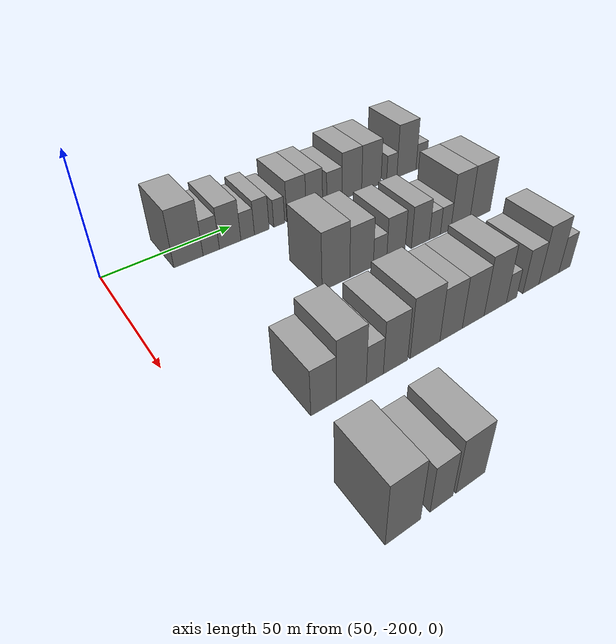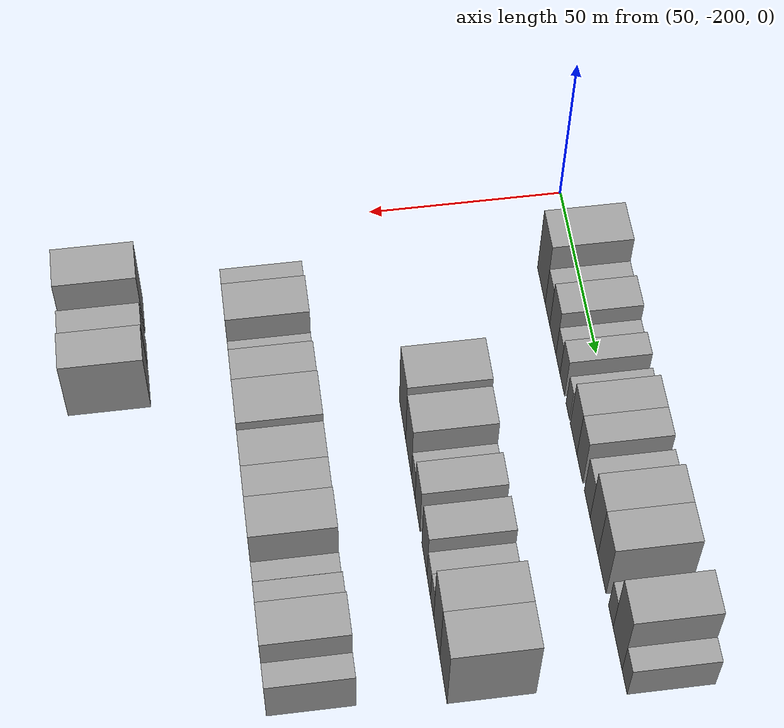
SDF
<sdf version="1.6">
 <world name="default">
  <model name="building_46">
   <static>1</static>
   <pose>50.0000 -171.7198 0 0.000000 0.000000 0.000000</pose>
   <link name="link">
    <pose>0 0 12.00 0 0 0</pose>
    <collision name="collision"><geometry><box><size>20.0000 11.2362 24.0000</size></box></geometry></collision>
    <visual name="visual">
     <cast_shadows>0</cast_shadows>
     <geometry><box><size>20.0000 11.2362 24.0000</size></box></geometry>
     <material>
      <script>
       <uri>model://grey_wall/materials/scripts</uri>
       <uri>model://grey_wall/materials/textures</uri>
       <name>vrc/grey_wall</name>
      </script>
     </material>
    </visual>
   </link>
  </model>
  <model name="building_47">
   <static>1</static>
   <pose>50.0000 -162.8576 0 0.000000 0.000000 0.000000</pose>
   <link name="link">
    <pose>0 0 7.50 0 0 0</pose>
    <collision name="collision"><geometry><box><size>20.0000 6.4881 15.0000</size></box></geometry></collision>
    <visual name="visual">
     <cast_shadows>0</cast_shadows>
     <geometry><box><size>20.0000 6.4881 15.0000</size></box></geometry>
     <material>
      <script>
       <uri>model://grey_wall/materials/scripts</uri>
       <uri>model://grey_wall/materials/textures</uri>
       <name>vrc/grey_wall</name>
      </script>
     </material>
    </visual>
   </link>
  </model>
  <model name="building_48">
   <static>1</static>
   <pose>50.0000 -155.2234 0 0.000000 0.000000 0.000000</pose>
   <link name="link">
    <pose>0 0 9.00 0 0 0</pose>
    <collision name="collision"><geometry><box><size>20.0000 8.7803 18.0000</size></box></geometry></collision>
    <visual name="visual">
     <cast_shadows>0</cast_shadows>
     <geometry><box><size>20.0000 8.7803 18.0000</size></box></geometry>
     <material>
      <script>
       <uri>model://grey_wall/materials/scripts</uri>
       <uri>model://grey_wall/materials/textures</uri>
       <name>vrc/grey_wall</name>
      </script>
     </material>
    </visual>
   </link>
  </model>
  <model name="building_49">
   <static>1</static>
   <pose>50.0000 -147.9795 0 0.000000 0.000000 0.000000</pose>
   <link name="link">
    <pose>0 0 6.00 0 0 0</pose>
    <collision name="collision"><geometry><box><size>20.0000 5.7076 12.0000</size></box></geometry></collision>
    <visual name="visual">
     <cast_shadows>0</cast_shadows>
     <geometry><box><size>20.0000 5.7076 12.0000</size></box></geometry>
     <material>
      <script>
       <uri>model://grey_wall/materials/scripts</uri>
       <uri>model://grey_wall/materials/textures</uri>
       <name>vrc/grey_wall</name>
      </script>
     </material>
    </visual>
   </link>
  </model>
  <model name="building_50">
   <static>1</static>
   <pose>50.0000 -141.9601 0 0.000000 0.000000 0.000000</pose>
   <link name="link">
    <pose>0 0 7.50 0 0 0</pose>
    <collision name="collision"><geometry><box><size>20.0000 6.3311 15.0000</size></box></geometry></collision>
    <visual name="visual">
     <cast_shadows>0</cast_shadows>
     <geometry><box><size>20.0000 6.3311 15.0000</size></box></geometry>
     <material>
      <script>
       <uri>model://grey_wall/materials/scripts</uri>
       <uri>model://grey_wall/materials/textures</uri>
       <name>vrc/grey_wall</name>
      </script>
     </material>
    </visual>
   </link>
  </model>
  <model name="building_51">
   <static>1</static>
   <pose>50.0000 -134.3684 0 0.000000 0.000000 0.000000</pose>
   <link name="link">
    <pose>0 0 6.00 0 0 0</pose>
    <collision name="collision"><geometry><box><size>20.0000 4.8523 12.0000</size></box></geometry></collision>
    <visual name="visual">
     <cast_shadows>0</cast_shadows>
     <geometry><box><size>20.0000 4.8523 12.0000</size></box></geometry>
     <material>
      <script>
       <uri>model://grey_wall/materials/scripts</uri>
       <uri>model://grey_wall/materials/textures</uri>
       <name>vrc/grey_wall</name>
      </script>
     </material>
    </visual>
   </link>
  </model>
  <model name="building_52">
   <static>1</static>
   <pose>50.0000 -126.5529 0 0.000000 0.000000 0.000000</pose>
   <link name="link">
    <pose>0 0 9.00 0 0 0</pose>
    <collision name="collision"><geometry><box><size>20.0000 8.7786 18.0000</size></box></geometry></collision>
    <visual name="visual">
     <cast_shadows>0</cast_shadows>
     <geometry><box><size>20.0000 8.7786 18.0000</size></box></geometry>
     <material>
      <script>
       <uri>model://grey_wall/materials/scripts</uri>
       <uri>model://grey_wall/materials/textures</uri>
       <name>vrc/grey_wall</name>
      </script>
     </material>
    </visual>
   </link>
  </model>
  <model name="building_53">
   <static>1</static>
   <pose>50.0000 -118.3003 0 0.000000 0.000000 0.000000</pose>
   <link name="link">
    <pose>0 0 9.00 0 0 0</pose>
    <collision name="collision"><geometry><box><size>20.0000 7.7267 18.0000</size></box></geometry></collision>
    <visual name="visual">
     <cast_shadows>0</cast_shadows>
     <geometry><box><size>20.0000 7.7267 18.0000</size></box></geometry>
     <material>
      <script>
       <uri>model://grey_wall/materials/scripts</uri>
       <uri>model://grey_wall/materials/textures</uri>
       <name>vrc/grey_wall</name>
      </script>
     </material>
    </visual>
   </link>
  </model>
  <model name="building_54">
   <static>1</static>
   <pose>50.0000 -108.7481 0 0.000000 0.000000 0.000000</pose>
   <link name="link">
    <pose>0 0 7.50 0 0 0</pose>
    <collision name="collision"><geometry><box><size>20.0000 7.3778 15.0000</size></box></geometry></collision>
    <visual name="visual">
     <cast_shadows>0</cast_shadows>
     <geometry><box><size>20.0000 7.3778 15.0000</size></box></geometry>
     <material>
      <script>
       <uri>model://grey_wall/materials/scripts</uri>
       <uri>model://grey_wall/materials/textures</uri>
       <name>vrc/grey_wall</name>
      </script>
     </material>
    </visual>
   </link>
  </model>
  <model name="building_55">
   <static>1</static>
   <pose>50.0000 -100.1763 0 0.000000 0.000000 0.000000</pose>
   <link name="link">
    <pose>0 0 10.50 0 0 0</pose>
    <collision name="collision"><geometry><box><size>20.0000 9.7657 21.0000</size></box></geometry></collision>
    <visual name="visual">
     <cast_shadows>0</cast_shadows>
     <geometry><box><size>20.0000 9.7657 21.0000</size></box></geometry>
     <material>
      <script>
       <uri>model://grey_wall/materials/scripts</uri>
       <uri>model://grey_wall/materials/textures</uri>
       <name>vrc/grey_wall</name>
      </script>
     </material>
    </visual>
   </link>
  </model>
  <model name="building_56">
   <static>1</static>
   <pose>50.0000 -90.2900 0 0.000000 0.000000 0.000000</pose>
   <link name="link">
    <pose>0 0 10.50 0 0 0</pose>
    <collision name="collision"><geometry><box><size>20.0000 10.0070 21.0000</size></box></geometry></collision>
    <visual name="visual">
     <cast_shadows>0</cast_shadows>
     <geometry><box><size>20.0000 10.0070 21.0000</size></box></geometry>
     <material>
      <script>
       <uri>model://grey_wall/materials/scripts</uri>
       <uri>model://grey_wall/materials/textures</uri>
       <name>vrc/grey_wall</name>
      </script>
     </material>
    </visual>
   </link>
  </model>
  <model name="building_57">
   <static>1</static>
   <pose>50.0000 -79.5370 0 0.000000 0.000000 0.000000</pose>
   <link name="link">
    <pose>0 0 6.00 0 0 0</pose>
    <collision name="collision"><geometry><box><size>20.0000 5.4991 12.0000</size></box></geometry></collision>
    <visual name="visual">
     <cast_shadows>0</cast_shadows>
     <geometry><box><size>20.0000 5.4991 12.0000</size></box></geometry>
     <material>
      <script>
       <uri>model://grey_wall/materials/scripts</uri>
       <uri>model://grey_wall/materials/textures</uri>
       <name>vrc/grey_wall</name>
      </script>
     </material>
    </visual>
   </link>
  </model>
  <model name="building_58">
   <static>1</static>
   <pose>50.0000 -71.5203 0 0.000000 0.000000 0.000000</pose>
   <link name="link">
    <pose>0 0 12.00 0 0 0</pose>
    <collision name="collision"><geometry><box><size>20.0000 10.5342 24.0000</size></box></geometry></collision>
    <visual name="visual">
     <cast_shadows>0</cast_shadows>
     <geometry><box><size>20.0000 10.5342 24.0000</size></box></geometry>
     <material>
      <script>
       <uri>model://grey_wall/materials/scripts</uri>
       <uri>model://grey_wall/materials/textures</uri>
       <name>vrc/grey_wall</name>
      </script>
     </material>
    </visual>
   </link>
  </model>
  <model name="building_59">
   <static>1</static>
   <pose>50.0000 -63.3227 0 0.000000 0.000000 0.000000</pose>
   <link name="link">
    <pose>0 0 6.00 0 0 0</pose>
    <collision name="collision"><geometry><box><size>20.0000 5.8610 12.0000</size></box></geometry></collision>
    <visual name="visual">
     <cast_shadows>0</cast_shadows>
     <geometry><box><size>20.0000 5.8610 12.0000</size></box></geometry>
     <material>
      <script>
       <uri>model://grey_wall/materials/scripts</uri>
       <uri>model://grey_wall/materials/textures</uri>
       <name>vrc/grey_wall</name>
      </script>
     </material>
    </visual>
   </link>
  </model>
  <model name="building_193">
   <static>1</static>
   <pose>90.0000 -136.7988 0 0.000000 0.000000 0.000000</pose>
   <link name="link">
    <pose>0 0 12.00 0 0 0</pose>
    <collision name="collision"><geometry><box><size>20.0000 11.4472 24.0000</size></box></geometry></collision>
    <visual name="visual">
     <cast_shadows>0</cast_shadows>
     <geometry><box><size>20.0000 11.4472 24.0000</size></box></geometry>
     <material>
      <script>
       <uri>model://grey_wall/materials/scripts</uri>
       <uri>model://grey_wall/materials/textures</uri>
       <name>vrc/grey_wall</name>
      </script>
     </material>
    </visual>
   </link>
  </model>
  <model name="building_194">
   <static>1</static>
   <pose>90.0000 -125.9730 0 0.000000 0.000000 0.000000</pose>
   <link name="link">
    <pose>0 0 10.50 0 0 0</pose>
    <collision name="collision"><geometry><box><size>20.0000 10.2042 21.0000</size></box></geometry></collision>
    <visual name="visual">
     <cast_shadows>0</cast_shadows>
     <geometry><box><size>20.0000 10.2042 21.0000</size></box></geometry>
     <material>
      <script>
       <uri>model://grey_wall/materials/scripts</uri>
       <uri>model://grey_wall/materials/textures</uri>
       <name>vrc/grey_wall</name>
      </script>
     </material>
    </visual>
   </link>
  </model>
  <model name="building_195">
   <static>1</static>
   <pose>90.0000 -117.8890 0 0.000000 0.000000 0.000000</pose>
   <link name="link">
    <pose>0 0 6.00 0 0 0</pose>
    <collision name="collision"><geometry><box><size>20.0000 5.9638 12.0000</size></box></geometry></collision>
    <visual name="visual">
     <cast_shadows>0</cast_shadows>
     <geometry><box><size>20.0000 5.9638 12.0000</size></box></geometry>
     <material>
      <script>
       <uri>model://grey_wall/materials/scripts</uri>
       <uri>model://grey_wall/materials/textures</uri>
       <name>vrc/grey_wall</name>
      </script>
     </material>
    </visual>
   </link>
  </model>
  <model name="building_196">
   <static>1</static>
   <pose>90.0000 -110.6893 0 0.000000 0.000000 0.000000</pose>
   <link name="link">
    <pose>0 0 9.00 0 0 0</pose>
    <collision name="collision"><geometry><box><size>20.0000 8.4355 18.0000</size></box></geometry></collision>
    <visual name="visual">
     <cast_shadows>0</cast_shadows>
     <geometry><box><size>20.0000 8.4355 18.0000</size></box></geometry>
     <material>
      <script>
       <uri>model://grey_wall/materials/scripts</uri>
       <uri>model://grey_wall/materials/textures</uri>
       <name>vrc/grey_wall</name>
      </script>
     </material>
    </visual>
   </link>
  </model>
  <model name="building_197">
   <static>1</static>
   <pose>90.0000 -99.1332 0 0.000000 0.000000 0.000000</pose>
   <link name="link">
    <pose>0 0 9.00 0 0 0</pose>
    <collision name="collision"><geometry><box><size>20.0000 8.6768 18.0000</size></box></geometry></collision>
    <visual name="visual">
     <cast_shadows>0</cast_shadows>
     <geometry><box><size>20.0000 8.6768 18.0000</size></box></geometry>
     <material>
      <script>
       <uri>model://grey_wall/materials/scripts</uri>
       <uri>model://grey_wall/materials/textures</uri>
       <name>vrc/grey_wall</name>
      </script>
     </material>
    </visual>
   </link>
  </model>
  <model name="building_198">
   <static>1</static>
   <pose>90.0000 -92.0664 0 0.000000 0.000000 0.000000</pose>
   <link name="link">
    <pose>0 0 6.00 0 0 0</pose>
    <collision name="collision"><geometry><box><size>20.0000 5.4568 12.0000</size></box></geometry></collision>
    <visual name="visual">
     <cast_shadows>0</cast_shadows>
     <geometry><box><size>20.0000 5.4568 12.0000</size></box></geometry>
     <material>
      <script>
       <uri>model://grey_wall/materials/scripts</uri>
       <uri>model://grey_wall/materials/textures</uri>
       <name>vrc/grey_wall</name>
      </script>
     </material>
    </visual>
   </link>
  </model>
  <model name="building_199">
   <static>1</static>
   <pose>90.0000 -86.6915 0 0.000000 0.000000 0.000000</pose>
   <link name="link">
    <pose>0 0 6.00 0 0 0</pose>
    <collision name="collision"><geometry><box><size>20.0000 5.2930 12.0000</size></box></geometry></collision>
    <visual name="visual">
     <cast_shadows>0</cast_shadows>
     <geometry><box><size>20.0000 5.2930 12.0000</size></box></geometry>
     <material>
      <script>
       <uri>model://grey_wall/materials/scripts</uri>
       <uri>model://grey_wall/materials/textures</uri>
       <name>vrc/grey_wall</name>
      </script>
     </material>
    </visual>
   </link>
  </model>
  <model name="building_200">
   <static>1</static>
   <pose>90.0000 -79.1349 0 0.000000 0.000000 0.000000</pose>
   <link name="link">
    <pose>0 0 12.00 0 0 0</pose>
    <collision name="collision"><geometry><box><size>20.0000 9.8201 24.0000</size></box></geometry></collision>
    <visual name="visual">
     <cast_shadows>0</cast_shadows>
     <geometry><box><size>20.0000 9.8201 24.0000</size></box></geometry>
     <material>
      <script>
       <uri>model://grey_wall/materials/scripts</uri>
       <uri>model://grey_wall/materials/textures</uri>
       <name>vrc/grey_wall</name>
      </script>
     </material>
    </visual>
   </link>
  </model>
  <model name="building_201">
   <static>1</static>
   <pose>90.0000 -68.7197 0 0.000000 0.000000 0.000000</pose>
   <link name="link">
    <pose>0 0 12.00 0 0 0</pose>
    <collision name="collision"><geometry><box><size>20.0000 11.0104 24.0000</size></box></geometry></collision>
    <visual name="visual">
     <cast_shadows>0</cast_shadows>
     <geometry><box><size>20.0000 11.0104 24.0000</size></box></geometry>
     <material>
      <script>
       <uri>model://grey_wall/materials/scripts</uri>
       <uri>model://grey_wall/materials/textures</uri>
       <name>vrc/grey_wall</name>
      </script>
     </material>
    </visual>
   </link>
  </model>
  <model name="building_323">
   <static>1</static>
   <pose>130.0000 -169.7824 0 0.000000 0.000000 0.000000</pose>
   <link name="link">
    <pose>0 0 9.00 0 0 0</pose>
    <collision name="collision"><geometry><box><size>20.0000 8.5433 18.0000</size></box></geometry></collision>
    <visual name="visual">
     <cast_shadows>0</cast_shadows>
     <geometry><box><size>20.0000 8.5433 18.0000</size></box></geometry>
     <material>
      <script>
       <uri>model://grey_wall/materials/scripts</uri>
       <uri>model://grey_wall/materials/textures</uri>
       <name>vrc/grey_wall</name>
      </script>
     </material>
    </visual>
   </link>
  </model>
  <model name="building_324">
   <static>1</static>
   <pose>130.0000 -160.2518 0 0.000000 0.000000 0.000000</pose>
   <link name="link">
    <pose>0 0 12.00 0 0 0</pose>
    <collision name="collision"><geometry><box><size>20.0000 10.5179 24.0000</size></box></geometry></collision>
    <visual name="visual">
     <cast_shadows>0</cast_shadows>
     <geometry><box><size>20.0000 10.5179 24.0000</size></box></geometry>
     <material>
      <script>
       <uri>model://grey_wall/materials/scripts</uri>
       <uri>model://grey_wall/materials/textures</uri>
       <name>vrc/grey_wall</name>
      </script>
     </material>
    </visual>
   </link>
  </model>
  <model name="building_325">
   <static>1</static>
   <pose>130.0000 -151.8718 0 0.000000 0.000000 0.000000</pose>
   <link name="link">
    <pose>0 0 7.50 0 0 0</pose>
    <collision name="collision"><geometry><box><size>20.0000 6.2420 15.0000</size></box></geometry></collision>
    <visual name="visual">
     <cast_shadows>0</cast_shadows>
     <geometry><box><size>20.0000 6.2420 15.0000</size></box></geometry>
     <material>
      <script>
       <uri>model://grey_wall/materials/scripts</uri>
       <uri>model://grey_wall/materials/textures</uri>
       <name>vrc/grey_wall</name>
      </script>
     </material>
    </visual>
   </link>
  </model>
  <model name="building_326">
   <static>1</static>
   <pose>130.0000 -144.1343 0 0.000000 0.000000 0.000000</pose>
   <link name="link">
    <pose>0 0 10.50 0 0 0</pose>
    <collision name="collision"><geometry><box><size>20.0000 9.2330 21.0000</size></box></geometry></collision>
    <visual name="visual">
     <cast_shadows>0</cast_shadows>
     <geometry><box><size>20.0000 9.2330 21.0000</size></box></geometry>
     <material>
      <script>
       <uri>model://grey_wall/materials/scripts</uri>
       <uri>model://grey_wall/materials/textures</uri>
       <name>vrc/grey_wall</name>
      </script>
     </material>
    </visual>
   </link>
  </model>
  <model name="building_327">
   <static>1</static>
   <pose>130.0000 -132.5599 0 0.000000 0.000000 0.000000</pose>
   <link name="link">
    <pose>0 0 12.00 0 0 0</pose>
    <collision name="collision"><geometry><box><size>20.0000 11.9157 24.0000</size></box></geometry></collision>
    <visual name="visual">
     <cast_shadows>0</cast_shadows>
     <geometry><box><size>20.0000 11.9157 24.0000</size></box></geometry>
     <material>
      <script>
       <uri>model://grey_wall/materials/scripts</uri>
       <uri>model://grey_wall/materials/textures</uri>
       <name>vrc/grey_wall</name>
      </script>
     </material>
    </visual>
   </link>
  </model>
  <model name="building_328">
   <static>1</static>
   <pose>130.0000 -121.8762 0 0.000000 0.000000 0.000000</pose>
   <link name="link">
    <pose>0 0 10.50 0 0 0</pose>
    <collision name="collision"><geometry><box><size>20.0000 9.4518 21.0000</size></box></geometry></collision>
    <visual name="visual">
     <cast_shadows>0</cast_shadows>
     <geometry><box><size>20.0000 9.4518 21.0000</size></box></geometry>
     <material>
      <script>
       <uri>model://grey_wall/materials/scripts</uri>
       <uri>model://grey_wall/materials/textures</uri>
       <name>vrc/grey_wall</name>
      </script>
     </material>
    </visual>
   </link>
  </model>
  <model name="building_329">
   <static>1</static>
   <pose>130.0000 -112.3474 0 0.000000 0.000000 0.000000</pose>
   <link name="link">
    <pose>0 0 10.50 0 0 0</pose>
    <collision name="collision"><geometry><box><size>20.0000 9.6057 21.0000</size></box></geometry></collision>
    <visual name="visual">
     <cast_shadows>0</cast_shadows>
     <geometry><box><size>20.0000 9.6057 21.0000</size></box></geometry>
     <material>
      <script>
       <uri>model://grey_wall/materials/scripts</uri>
       <uri>model://grey_wall/materials/textures</uri>
       <name>vrc/grey_wall</name>
      </script>
     </material>
    </visual>
   </link>
  </model>
  <model name="building_330">
   <static>1</static>
   <pose>130.0000 -102.4316 0 0.000000 0.000000 0.000000</pose>
   <link name="link">
    <pose>0 0 12.00 0 0 0</pose>
    <collision name="collision"><geometry><box><size>20.0000 10.2258 24.0000</size></box></geometry></collision>
    <visual name="visual">
     <cast_shadows>0</cast_shadows>
     <geometry><box><size>20.0000 10.2258 24.0000</size></box></geometry>
     <material>
      <script>
       <uri>model://grey_wall/materials/scripts</uri>
       <uri>model://grey_wall/materials/textures</uri>
       <name>vrc/grey_wall</name>
      </script>
     </material>
    </visual>
   </link>
  </model>
  <model name="building_331">
   <static>1</static>
   <pose>130.0000 -94.8656 0 0.000000 0.000000 0.000000</pose>
   <link name="link">
    <pose>0 0 6.00 0 0 0</pose>
    <collision name="collision"><geometry><box><size>20.0000 4.9062 12.0000</size></box></geometry></collision>
    <visual name="visual">
     <cast_shadows>0</cast_shadows>
     <geometry><box><size>20.0000 4.9062 12.0000</size></box></geometry>
     <material>
      <script>
       <uri>model://grey_wall/materials/scripts</uri>
       <uri>model://grey_wall/materials/textures</uri>
       <name>vrc/grey_wall</name>
      </script>
     </material>
    </visual>
   </link>
  </model>
  <model name="building_332">
   <static>1</static>
   <pose>130.0000 -85.4718 0 0.000000 0.000000 0.000000</pose>
   <link name="link">
    <pose>0 0 9.00 0 0 0</pose>
    <collision name="collision"><geometry><box><size>20.0000 7.8814 18.0000</size></box></geometry></collision>
    <visual name="visual">
     <cast_shadows>0</cast_shadows>
     <geometry><box><size>20.0000 7.8814 18.0000</size></box></geometry>
     <material>
      <script>
       <uri>model://grey_wall/materials/scripts</uri>
       <uri>model://grey_wall/materials/textures</uri>
       <name>vrc/grey_wall</name>
      </script>
     </material>
    </visual>
   </link>
  </model>
  <model name="building_333">
   <static>1</static>
   <pose>130.0000 -76.4172 0 0.000000 0.000000 0.000000</pose>
   <link name="link">
    <pose>0 0 12.00 0 0 0</pose>
    <collision name="collision"><geometry><box><size>20.0000 10.2279 24.0000</size></box></geometry></collision>
    <visual name="visual">
     <cast_shadows>0</cast_shadows>
     <geometry><box><size>20.0000 10.2279 24.0000</size></box></geometry>
     <material>
      <script>
       <uri>model://grey_wall/materials/scripts</uri>
       <uri>model://grey_wall/materials/textures</uri>
       <name>vrc/grey_wall</name>
      </script>
     </material>
    </visual>
   </link>
  </model>
  <model name="building_334">
   <static>1</static>
   <pose>130.0000 -68.3030 0 0.000000 0.000000 0.000000</pose>
   <link name="link">
    <pose>0 0 7.50 0 0 0</pose>
    <collision name="collision"><geometry><box><size>20.0000 6.0005 15.0000</size></box></geometry></collision>
    <visual name="visual">
     <cast_shadows>0</cast_shadows>
     <geometry><box><size>20.0000 6.0005 15.0000</size></box></geometry>
     <material>
      <script>
       <uri>model://grey_wall/materials/scripts</uri>
       <uri>model://grey_wall/materials/textures</uri>
       <name>vrc/grey_wall</name>
      </script>
     </material>
    </visual>
   </link>
  </model>
  <model name="building_462">
   <static>1</static>
   <pose>170.0000 -175.1895 0 0.000000 0.000000 0.000000</pose>
   <link name="link">
    <pose>0 0 12.00 0 0 0</pose>
    <collision name="collision"><geometry><box><size>20.0000 10.7854 24.0000</size></box></geometry></collision>
    <visual name="visual">
     <cast_shadows>0</cast_shadows>
     <geometry><box><size>20.0000 10.7854 24.0000</size></box></geometry>
     <material>
      <script>
       <uri>model://grey_wall/materials/scripts</uri>
       <uri>model://grey_wall/materials/textures</uri>
       <name>vrc/grey_wall</name>
      </script>
     </material>
    </visual>
   </link>
  </model>
  <model name="building_463">
   <static>1</static>
   <pose>170.0000 -163.0595 0 0.000000 0.000000 0.000000</pose>
   <link name="link">
    <pose>0 0 9.00 0 0 0</pose>
    <collision name="collision"><geometry><box><size>20.0000 7.4746 18.0000</size></box></geometry></collision>
    <visual name="visual">
     <cast_shadows>0</cast_shadows>
     <geometry><box><size>20.0000 7.4746 18.0000</size></box></geometry>
     <material>
      <script>
       <uri>model://grey_wall/materials/scripts</uri>
       <uri>model://grey_wall/materials/textures</uri>
       <name>vrc/grey_wall</name>
      </script>
     </material>
    </visual>
   </link>
  </model>
  <model name="building_464">
   <static>1</static>
   <pose>170.0000 -153.3222 0 0.000000 0.000000 0.000000</pose>
   <link name="link">
    <pose>0 0 10.50 0 0 0</pose>
    <collision name="collision"><geometry><box><size>20.0000 10.0000 21.0000</size></box></geometry></collision>
    <visual name="visual">
     <cast_shadows>0</cast_shadows>
     <geometry><box><size>20.0000 10.0000 21.0000</size></box></geometry>
     <material>
      <script>
       <uri>model://grey_wall/materials/scripts</uri>
       <uri>model://grey_wall/materials/textures</uri>
       <name>vrc/grey_wall</name>
      </script>
     </material>
    </visual>
   </link>
  </model>
 </world>
</sdf>
